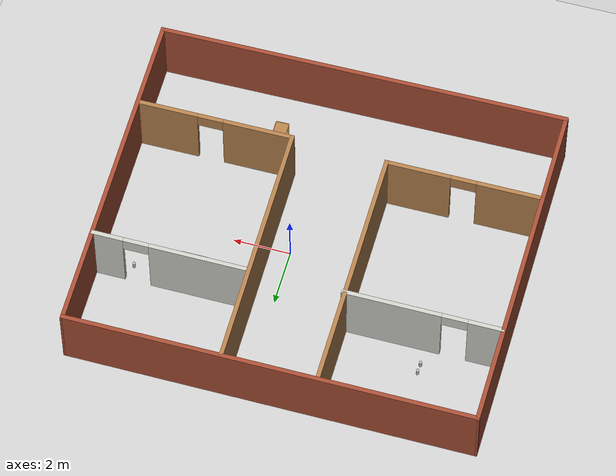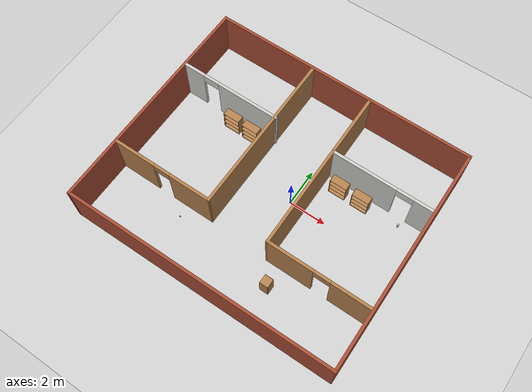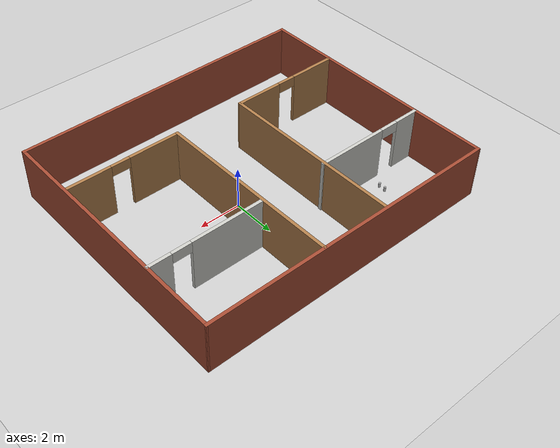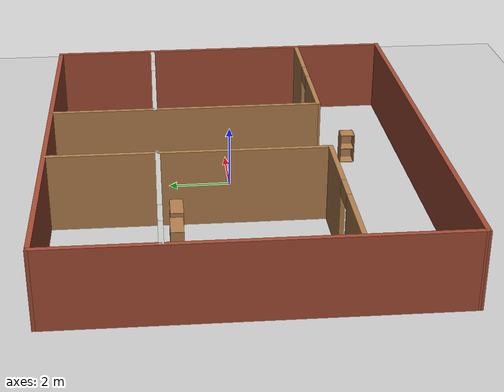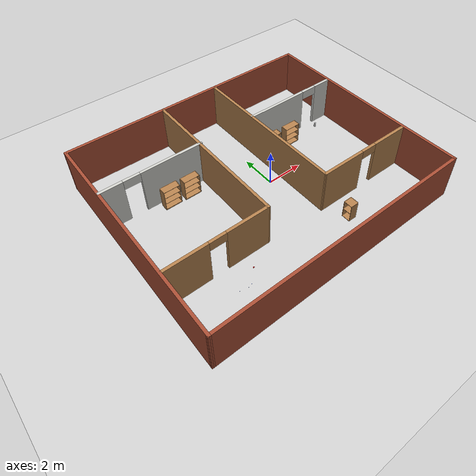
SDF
<sdf version="1.7">
 <world name="default">
  <light name="sun" type="directional">
   <pose>0 0 10 0 -0 0</pose>
   <diffuse>0.8 0.8 0.8 1</diffuse>
   <specular>0.2 0.2 0.2 1</specular>
   <attenuation>
    <range>1000</range>
    <constant>0.9</constant>
    <linear>0.01</linear>
    <quadratic>0.001</quadratic>
   </attenuation>
   <direction>-0.5 0.1 -0.9</direction>
   <spot><inner_angle>0</inner_angle><outer_angle>0</outer_angle><falloff>0</falloff></spot>
  </light>
  <model name="ground_plane">
   <static>1</static>
   <link name="link">
    <collision name="collision">
     <geometry><plane><normal>0 0 1</normal><size>100 100</size></plane></geometry>
     <surface><friction><ode><mu>100</mu><mu2>50</mu2></ode></friction></surface>
    </collision>
    <visual name="visual">
     <cast_shadows>0</cast_shadows>
     <geometry><plane><normal>0 0 1</normal><size>100 100</size></plane></geometry>
     <material>
      <script><uri>file://media/materials/scripts/gazebo.material</uri><name>Gazebo/Grey</name></script>
     </material>
    </visual>
   </link>
  </model>
  <gravity>0 0 -9.8</gravity>
  <magnetic_field>6e-06 2.3e-05 -4.2e-05</magnetic_field>
  <atmosphere type="adiabatic"/>
  <physics type="ode">
   <max_step_size>0.001</max_step_size>
   <real_time_factor>1</real_time_factor>
   <real_time_update_rate>1000</real_time_update_rate>
  </physics>
  <scene><ambient>0.4 0.4 0.4 1</ambient><background>0.7 0.7 0.7 1</background><shadows>1</shadows></scene>
  <audio><device>default</device></audio>
  <spherical_coordinates>
   <surface_model>EARTH_WGS84</surface_model>
   <latitude_deg>0</latitude_deg>
   <longitude_deg>0</longitude_deg>
   <elevation>0</elevation>
   <heading_deg>0</heading_deg>
  </spherical_coordinates>
  <model name="my_floor">
   <pose>-0.890174 -0.198428 0 0 -0 0</pose>
   <link name="Wall_0">
    <collision name="Wall_0_Collision">
     <geometry><box><size>12.2384 0.15 2.5</size></box></geometry>
     <pose>0 0 1.25 0 -0 0</pose>
    </collision>
    <visual name="Wall_0_Visual">
     <pose>0 0 1.25 0 -0 0</pose>
     <geometry><box><size>12.2384 0.15 2.5</size></box></geometry>
     <material>
      <script><uri>file://media/materials/scripts/gazebo.material</uri><name>Gazebo/Bricks</name></script>
      <ambient>1 1 1 1</ambient>
     </material>
     <meta><layer>0</layer></meta>
    </visual>
    <pose>-7.14032 7.5e-05 0 0 -0 1.5658</pose>
   </link>
   <link name="Wall_10">
    <pose>-4.36465 2.59473 0 0 -0 -0.00369</pose>
    <visual name="Wall_10_Visual_0">
     <pose>-2.17328 0 1.25 0 -0 0</pose>
     <geometry><box><size>1.25426 0.15 2.5</size></box></geometry>
     <material>
      <script><uri>file://media/materials/scripts/gazebo.material</uri><name>Gazebo/CeilingTiled</name></script>
      <ambient>1 1 1 1</ambient>
     </material>
     <meta><layer>0</layer></meta>
    </visual>
    <collision name="Wall_10_Collision_0">
     <geometry><box><size>1.25426 0.15 2.5</size></box></geometry>
     <pose>-2.17328 0 1.25 0 -0 0</pose>
    </collision>
    <visual name="Wall_10_Visual_1">
     <pose>1.07713 0 1.25 0 -0 0</pose>
     <geometry><box><size>3.44655 0.15 2.5</size></box></geometry>
     <material>
      <script><uri>file://media/materials/scripts/gazebo.material</uri><name>Gazebo/CeilingTiled</name></script>
      <ambient>1 1 1 1</ambient>
     </material>
     <meta><layer>0</layer></meta>
    </visual>
    <collision name="Wall_10_Collision_1">
     <geometry><box><size>3.44655 0.15 2.5</size></box></geometry>
     <pose>1.07713 0 1.25 0 -0 0</pose>
    </collision>
    <visual name="Wall_10_Visual_2">
     <pose>-1.09614 0 2.25 0 -0 0</pose>
     <geometry><box><size>0.9 0.15 0.5</size></box></geometry>
     <material>
      <script><uri>file://media/materials/scripts/gazebo.material</uri><name>Gazebo/CeilingTiled</name></script>
      <ambient>1 1 1 1</ambient>
     </material>
     <meta><layer>0</layer></meta>
    </visual>
    <collision name="Wall_10_Collision_2">
     <geometry><box><size>0.9 0.15 0.5</size></box></geometry>
     <pose>-1.09614 0 2.25 0 -0 0</pose>
    </collision>
   </link>
   <link name="Wall_13">
    <collision name="Wall_13_Collision">
     <geometry><box><size>8.93972 0.15 2.5</size></box></geometry>
     <pose>0 0 1.25 0 -0 0</pose>
    </collision>
    <visual name="Wall_13_Visual">
     <pose>0 0 1.25 0 -0 0</pose>
     <geometry><box><size>8.93972 0.15 2.5</size></box></geometry>
     <material>
      <script><uri>file://media/materials/scripts/gazebo.material</uri><name>Gazebo/Wood</name></script>
      <ambient>1 1 1 1</ambient>
     </material>
     <meta><layer>0</layer></meta>
    </visual>
    <pose>1.63926 1.54882 0 0 -0 -1.56622</pose>
   </link>
   <link name="Wall_14">
    <pose>4.33437 -2.84599 0 0 -0 0</pose>
    <visual name="Wall_14_Visual_0">
     <pose>-1.49127 0 1.25 0 -0 0</pose>
     <geometry><box><size>2.51747 0.15 2.5</size></box></geometry>
     <material>
      <script><uri>file://media/materials/scripts/gazebo.material</uri><name>Gazebo/Wood</name></script>
      <ambient>1 1 1 1</ambient>
     </material>
     <meta><layer>0</layer></meta>
    </visual>
    <collision name="Wall_14_Collision_0">
     <geometry><box><size>2.51747 0.15 2.5</size></box></geometry>
     <pose>-1.49127 0 1.25 0 -0 0</pose>
    </collision>
    <visual name="Wall_14_Visual_1">
     <pose>1.70873 0 1.25 0 -0 0</pose>
     <geometry><box><size>2.08253 0.15 2.5</size></box></geometry>
     <material>
      <script><uri>file://media/materials/scripts/gazebo.material</uri><name>Gazebo/Wood</name></script>
      <ambient>1 1 1 1</ambient>
     </material>
     <meta><layer>0</layer></meta>
    </visual>
    <collision name="Wall_14_Collision_1">
     <geometry><box><size>2.08253 0.15 2.5</size></box></geometry>
     <pose>1.70873 0 1.25 0 -0 0</pose>
    </collision>
    <visual name="Wall_14_Visual_2">
     <pose>0.217471 0 2.25 0 -0 0</pose>
     <geometry><box><size>0.9 0.15 0.5</size></box></geometry>
     <material>
      <script><uri>file://media/materials/scripts/gazebo.material</uri><name>Gazebo/Wood</name></script>
      <ambient>1 1 1 1</ambient>
     </material>
     <meta><layer>0</layer></meta>
    </visual>
    <collision name="Wall_14_Collision_2">
     <geometry><box><size>0.9 0.15 0.5</size></box></geometry>
     <pose>0.217471 0 2.25 0 -0 0</pose>
    </collision>
   </link>
   <link name="Wall_16">
    <pose>4.35459 2.59473 0 0 -0 -0.003704</pose>
    <visual name="Wall_16_Visual_0">
     <pose>-1.00976 0 1.25 0 -0 0</pose>
     <geometry><box><size>3.56118 0.15 2.5</size></box></geometry>
     <material>
      <script><uri>file://media/materials/scripts/gazebo.material</uri><name>Gazebo/CeilingTiled</name></script>
      <ambient>1 1 1 1</ambient>
     </material>
     <meta><layer>0</layer></meta>
    </visual>
    <collision name="Wall_16_Collision_0">
     <geometry><box><size>3.56118 0.15 2.5</size></box></geometry>
     <pose>-1.00976 0 1.25 0 -0 0</pose>
    </collision>
    <visual name="Wall_16_Visual_1">
     <pose>2.23059 0 1.25 0 -0 0</pose>
     <geometry><box><size>1.11953 0.15 2.5</size></box></geometry>
     <material>
      <script><uri>file://media/materials/scripts/gazebo.material</uri><name>Gazebo/CeilingTiled</name></script>
      <ambient>1 1 1 1</ambient>
     </material>
     <meta><layer>0</layer></meta>
    </visual>
    <collision name="Wall_16_Collision_1">
     <geometry><box><size>1.11953 0.15 2.5</size></box></geometry>
     <pose>2.23059 0 1.25 0 -0 0</pose>
    </collision>
    <visual name="Wall_16_Visual_2">
     <pose>1.22083 0 2.25 0 -0 0</pose>
     <geometry><box><size>0.9 0.15 0.5</size></box></geometry>
     <material>
      <script><uri>file://media/materials/scripts/gazebo.material</uri><name>Gazebo/CeilingTiled</name></script>
      <ambient>1 1 1 1</ambient>
     </material>
     <meta><layer>0</layer></meta>
    </visual>
    <collision name="Wall_16_Collision_2">
     <geometry><box><size>0.9 0.15 0.5</size></box></geometry>
     <pose>1.22083 0 2.25 0 -0 0</pose>
    </collision>
   </link>
   <link name="Wall_2">
    <collision name="Wall_2_Collision">
     <geometry><box><size>14.3503 0.15 2.5</size></box></geometry>
     <pose>0 0 1.25 0 -0 0</pose>
    </collision>
    <visual name="Wall_2_Visual">
     <pose>0 0 1.25 0 -0 0</pose>
     <geometry><box><size>14.3503 0.15 2.5</size></box></geometry>
     <material>
      <script><uri>file://media/materials/scripts/gazebo.material</uri><name>Gazebo/Bricks</name></script>
      <ambient>1 1 1 1</ambient>
     </material>
     <meta><layer>0</layer></meta>
    </visual>
    <pose>-0.010057 6.01403 0 0 -0 -0.004249</pose>
   </link>
   <link name="Wall_3">
    <collision name="Wall_3_Collision">
     <geometry><box><size>12.0776 0.15 2.5</size></box></geometry>
     <pose>0 0 1.25 0 -0 0</pose>
    </collision>
    <visual name="Wall_3_Visual">
     <pose>0 0 1.25 0 -0 0</pose>
     <geometry><box><size>12.0776 0.15 2.5</size></box></geometry>
     <material>
      <script><uri>file://media/materials/scripts/gazebo.material</uri><name>Gazebo/Bricks</name></script>
      <ambient>1 1 1 1</ambient>
     </material>
     <meta><layer>0</layer></meta>
    </visual>
    <pose>7.13026 0.020189 0 0 -0 -1.56405</pose>
   </link>
   <link name="Wall_4">
    <collision name="Wall_4_Collision">
     <geometry><box><size>14.4913 0.15 2.5</size></box></geometry>
     <pose>0 0 1.25 0 -0 0</pose>
    </collision>
    <visual name="Wall_4_Visual">
     <pose>0 0 1.25 0 -0 0</pose>
     <geometry><box><size>14.4913 0.15 2.5</size></box></geometry>
     <material>
      <script><uri>file://media/materials/scripts/gazebo.material</uri><name>Gazebo/Bricks</name></script>
      <ambient>1 1 1 1</ambient>
     </material>
     <meta><layer>0</layer></meta>
    </visual>
    <pose>0 -5.99377 0 0 -0 -3.13458</pose>
   </link>
   <link name="Wall_7">
    <collision name="Wall_7_Collision">
     <geometry><box><size>8.83906 0.15 2.5</size></box></geometry>
     <pose>0 0 1.25 0 -0 0</pose>
    </collision>
    <visual name="Wall_7_Visual">
     <pose>0 0 1.25 0 -0 0</pose>
     <geometry><box><size>8.83906 0.15 2.5</size></box></geometry>
     <material>
      <script><uri>file://media/materials/scripts/gazebo.material</uri><name>Gazebo/Wood</name></script>
      <ambient>1 1 1 1</ambient>
     </material>
     <meta><layer>0</layer></meta>
    </visual>
    <pose>-1.68954 1.61922 0 0 -0 -1.57311</pose>
   </link>
   <link name="Wall_8">
    <pose>-4.3746 -2.72531 0 0 -0 3.14159</pose>
    <visual name="Wall_8_Visual_0">
     <pose>-1.58259 0 1.25 0 -0 0</pose>
     <geometry><box><size>2.33482 0.15 2.5</size></box></geometry>
     <material>
      <script><uri>file://media/materials/scripts/gazebo.material</uri><name>Gazebo/Wood</name></script>
      <ambient>1 1 1 1</ambient>
     </material>
     <meta><layer>0</layer></meta>
    </visual>
    <collision name="Wall_8_Collision_0">
     <geometry><box><size>2.33482 0.15 2.5</size></box></geometry>
     <pose>-1.58259 0 1.25 0 -0 0</pose>
    </collision>
    <visual name="Wall_8_Visual_1">
     <pose>1.61741 0 1.25 0 -0 0</pose>
     <geometry><box><size>2.26518 0.15 2.5</size></box></geometry>
     <material>
      <script><uri>file://media/materials/scripts/gazebo.material</uri><name>Gazebo/Wood</name></script>
      <ambient>1 1 1 1</ambient>
     </material>
     <meta><layer>0</layer></meta>
    </visual>
    <collision name="Wall_8_Collision_1">
     <geometry><box><size>2.26518 0.15 2.5</size></box></geometry>
     <pose>1.61741 0 1.25 0 -0 0</pose>
    </collision>
    <visual name="Wall_8_Visual_2">
     <pose>0.034824 0 2.25 0 -0 0</pose>
     <geometry><box><size>0.9 0.15 0.5</size></box></geometry>
     <material>
      <script><uri>file://media/materials/scripts/gazebo.material</uri><name>Gazebo/Wood</name></script>
      <ambient>1 1 1 1</ambient>
     </material>
     <meta><layer>0</layer></meta>
    </visual>
    <collision name="Wall_8_Collision_2">
     <geometry><box><size>0.9 0.15 0.5</size></box></geometry>
     <pose>0.034824 0 2.25 0 -0 0</pose>
    </collision>
   </link>
   <static>1</static>
  </model>
  <model name="bookshelf">
   <static>1</static>
   <link name="link">
    <inertial><mass>1</mass></inertial>
    <collision name="back">
     <pose>0 0.005 0.6 0 -0 0</pose>
     <geometry><box><size>0.9 0.01 1.2</size></box></geometry>
    </collision>
    <visual name="visual1">
     <pose>0 0.005 0.6 0 -0 0</pose>
     <geometry><box><size>0.9 0.01 1.2</size></box></geometry>
     <material>
      <script><uri>file://media/materials/scripts/gazebo.material</uri><name>Gazebo/Wood</name></script>
     </material>
    </visual>
    <collision name="left_side">
     <pose>0.45 -0.195 0.6 0 -0 0</pose>
     <geometry><box><size>0.02 0.4 1.2</size></box></geometry>
    </collision>
    <visual name="visual2">
     <pose>0.45 -0.195 0.6 0 -0 0</pose>
     <geometry><box><size>0.02 0.4 1.2</size></box></geometry>
     <material>
      <script><uri>file://media/materials/scripts/gazebo.material</uri><name>Gazebo/Wood</name></script>
     </material>
    </visual>
    <collision name="right_side">
     <pose>-0.45 -0.195 0.6 0 -0 0</pose>
     <geometry><box><size>0.02 0.4 1.2</size></box></geometry>
    </collision>
    <visual name="visual3">
     <pose>-0.45 -0.195 0.6 0 -0 0</pose>
     <geometry><box><size>0.02 0.4 1.2</size></box></geometry>
     <material>
      <script><uri>file://media/materials/scripts/gazebo.material</uri><name>Gazebo/Wood</name></script>
     </material>
    </visual>
    <collision name="bottom">
     <pose>0 -0.195 0.03 0 -0 0</pose>
     <geometry><box><size>0.88 0.4 0.06</size></box></geometry>
    </collision>
    <visual name="visual4">
     <pose>0 -0.195 0.03 0 -0 0</pose>
     <geometry><box><size>0.88 0.4 0.06</size></box></geometry>
     <material>
      <script><uri>file://media/materials/scripts/gazebo.material</uri><name>Gazebo/Wood</name></script>
     </material>
    </visual>
    <collision name="top">
     <pose>0 -0.195 1.19 0 -0 0</pose>
     <geometry><box><size>0.88 0.4 0.02</size></box></geometry>
    </collision>
    <visual name="visual5">
     <pose>0 -0.195 1.19 0 -0 0</pose>
     <geometry><box><size>0.88 0.4 0.02</size></box></geometry>
     <material>
      <script><uri>file://media/materials/scripts/gazebo.material</uri><name>Gazebo/Wood</name></script>
     </material>
    </visual>
    <collision name="low_shelf">
     <pose>0 -0.195 0.43 0 -0 0</pose>
     <geometry><box><size>0.88 0.4 0.02</size></box></geometry>
    </collision>
    <visual name="visual6">
     <pose>0 -0.195 0.43 0 -0 0</pose>
     <geometry><box><size>0.88 0.4 0.02</size></box></geometry>
     <material>
      <script><uri>file://media/materials/scripts/gazebo.material</uri><name>Gazebo/Wood</name></script>
     </material>
    </visual>
    <collision name="high_shelf">
     <pose>0 -0.195 0.8 0 -0 0</pose>
     <geometry><box><size>0.88 0.4 0.02</size></box></geometry>
    </collision>
    <visual name="visual7">
     <pose>0 -0.195 0.8 0 -0 0</pose>
     <geometry><box><size>0.88 0.4 0.02</size></box></geometry>
     <material>
      <script><uri>file://media/materials/scripts/gazebo.material</uri><name>Gazebo/Wood</name></script>
     </material>
    </visual>
   </link>
   <pose>-4.76816 2.11045 0 0 -0 0</pose>
  </model>
  <model name="bookshelf_0">
   <static>1</static>
   <link name="link">
    <inertial><mass>1</mass></inertial>
    <collision name="back">
     <pose>0 0.005 0.6 0 -0 0</pose>
     <geometry><box><size>0.9 0.01 1.2</size></box></geometry>
    </collision>
    <visual name="visual1">
     <pose>0 0.005 0.6 0 -0 0</pose>
     <geometry><box><size>0.9 0.01 1.2</size></box></geometry>
     <material>
      <script><uri>file://media/materials/scripts/gazebo.material</uri><name>Gazebo/Wood</name></script>
     </material>
    </visual>
    <collision name="left_side">
     <pose>0.45 -0.195 0.6 0 -0 0</pose>
     <geometry><box><size>0.02 0.4 1.2</size></box></geometry>
    </collision>
    <visual name="visual2">
     <pose>0.45 -0.195 0.6 0 -0 0</pose>
     <geometry><box><size>0.02 0.4 1.2</size></box></geometry>
     <material>
      <script><uri>file://media/materials/scripts/gazebo.material</uri><name>Gazebo/Wood</name></script>
     </material>
    </visual>
    <collision name="right_side">
     <pose>-0.45 -0.195 0.6 0 -0 0</pose>
     <geometry><box><size>0.02 0.4 1.2</size></box></geometry>
    </collision>
    <visual name="visual3">
     <pose>-0.45 -0.195 0.6 0 -0 0</pose>
     <geometry><box><size>0.02 0.4 1.2</size></box></geometry>
     <material>
      <script><uri>file://media/materials/scripts/gazebo.material</uri><name>Gazebo/Wood</name></script>
     </material>
    </visual>
    <collision name="bottom">
     <pose>0 -0.195 0.03 0 -0 0</pose>
     <geometry><box><size>0.88 0.4 0.06</size></box></geometry>
    </collision>
    <visual name="visual4">
     <pose>0 -0.195 0.03 0 -0 0</pose>
     <geometry><box><size>0.88 0.4 0.06</size></box></geometry>
     <material>
      <script><uri>file://media/materials/scripts/gazebo.material</uri><name>Gazebo/Wood</name></script>
     </material>
    </visual>
    <collision name="top">
     <pose>0 -0.195 1.19 0 -0 0</pose>
     <geometry><box><size>0.88 0.4 0.02</size></box></geometry>
    </collision>
    <visual name="visual5">
     <pose>0 -0.195 1.19 0 -0 0</pose>
     <geometry><box><size>0.88 0.4 0.02</size></box></geometry>
     <material>
      <script><uri>file://media/materials/scripts/gazebo.material</uri><name>Gazebo/Wood</name></script>
     </material>
    </visual>
    <collision name="low_shelf">
     <pose>0 -0.195 0.43 0 -0 0</pose>
     <geometry><box><size>0.88 0.4 0.02</size></box></geometry>
    </collision>
    <visual name="visual6">
     <pose>0 -0.195 0.43 0 -0 0</pose>
     <geometry><box><size>0.88 0.4 0.02</size></box></geometry>
     <material>
      <script><uri>file://media/materials/scripts/gazebo.material</uri><name>Gazebo/Wood</name></script>
     </material>
    </visual>
    <collision name="high_shelf">
     <pose>0 -0.195 0.8 0 -0 0</pose>
     <geometry><box><size>0.88 0.4 0.02</size></box></geometry>
    </collision>
    <visual name="visual7">
     <pose>0 -0.195 0.8 0 -0 0</pose>
     <geometry><box><size>0.88 0.4 0.02</size></box></geometry>
     <material>
      <script><uri>file://media/materials/scripts/gazebo.material</uri><name>Gazebo/Wood</name></script>
     </material>
    </visual>
   </link>
   <pose>-3.63806 2.0793 0 0 -0 0</pose>
  </model>
  <model name="beer">
   <link name="link">
    <pose>0 0 0.115 0 -0 0</pose>
    <inertial>
     <mass>0.39</mass>
     <inertia><ixx>0.00058</ixx><ixy>0</ixy><ixz>0</ixz><iyy>0.00058</iyy><iyz>0</iyz><izz>0.00019</izz></inertia>
    </inertial>
    <collision name="collision">
     <geometry><cylinder><radius>0.055</radius><length>0.23</length></cylinder></geometry>
    </collision>
    <visual name="visual">
     <geometry><cylinder><radius>0.055</radius><length>0.23</length></cylinder></geometry>
     <material>
      <script>
       <uri>model://beer/materials/scripts</uri>
       <uri>model://beer/materials/textures</uri>
       <name>Beer/Diffuse</name>
      </script>
     </material>
    </visual>
   </link>
   <pose>-5.40247 3.06546 -2e-06 1e-06 -0 -3.4e-05</pose>
  </model>
  <model name="beer_0">
   <link name="link">
    <pose>0 0 0.115 0 -0 0</pose>
    <inertial>
     <mass>0.39</mass>
     <inertia><ixx>0.00058</ixx><ixy>0</ixy><ixz>0</ixz><iyy>0.00058</iyy><iyz>0</iyz><izz>0.00019</izz></inertia>
    </inertial>
    <collision name="collision">
     <geometry><cylinder><radius>0.055</radius><length>0.23</length></cylinder></geometry>
    </collision>
    <visual name="visual">
     <geometry><cylinder><radius>0.055</radius><length>0.23</length></cylinder></geometry>
     <material>
      <script>
       <uri>model://beer/materials/scripts</uri>
       <uri>model://beer/materials/textures</uri>
       <name>Beer/Diffuse</name>
      </script>
     </material>
    </visual>
   </link>
   <pose>-5.3848 3.388 -2e-06 1e-06 0 -3.1e-05</pose>
  </model>
  <model name="bookshelf_1">
   <static>1</static>
   <link name="link">
    <inertial><mass>1</mass></inertial>
    <collision name="back">
     <pose>0 0.005 0.6 0 -0 0</pose>
     <geometry><box><size>0.9 0.01 1.2</size></box></geometry>
    </collision>
    <visual name="visual1">
     <pose>0 0.005 0.6 0 -0 0</pose>
     <geometry><box><size>0.9 0.01 1.2</size></box></geometry>
     <material>
      <script><uri>file://media/materials/scripts/gazebo.material</uri><name>Gazebo/Wood</name></script>
     </material>
    </visual>
    <collision name="left_side">
     <pose>0.45 -0.195 0.6 0 -0 0</pose>
     <geometry><box><size>0.02 0.4 1.2</size></box></geometry>
    </collision>
    <visual name="visual2">
     <pose>0.45 -0.195 0.6 0 -0 0</pose>
     <geometry><box><size>0.02 0.4 1.2</size></box></geometry>
     <material>
      <script><uri>file://media/materials/scripts/gazebo.material</uri><name>Gazebo/Wood</name></script>
     </material>
    </visual>
    <collision name="right_side">
     <pose>-0.45 -0.195 0.6 0 -0 0</pose>
     <geometry><box><size>0.02 0.4 1.2</size></box></geometry>
    </collision>
    <visual name="visual3">
     <pose>-0.45 -0.195 0.6 0 -0 0</pose>
     <geometry><box><size>0.02 0.4 1.2</size></box></geometry>
     <material>
      <script><uri>file://media/materials/scripts/gazebo.material</uri><name>Gazebo/Wood</name></script>
     </material>
    </visual>
    <collision name="bottom">
     <pose>0 -0.195 0.03 0 -0 0</pose>
     <geometry><box><size>0.88 0.4 0.06</size></box></geometry>
    </collision>
    <visual name="visual4">
     <pose>0 -0.195 0.03 0 -0 0</pose>
     <geometry><box><size>0.88 0.4 0.06</size></box></geometry>
     <material>
      <script><uri>file://media/materials/scripts/gazebo.material</uri><name>Gazebo/Wood</name></script>
     </material>
    </visual>
    <collision name="top">
     <pose>0 -0.195 1.19 0 -0 0</pose>
     <geometry><box><size>0.88 0.4 0.02</size></box></geometry>
    </collision>
    <visual name="visual5">
     <pose>0 -0.195 1.19 0 -0 0</pose>
     <geometry><box><size>0.88 0.4 0.02</size></box></geometry>
     <material>
      <script><uri>file://media/materials/scripts/gazebo.material</uri><name>Gazebo/Wood</name></script>
     </material>
    </visual>
    <collision name="low_shelf">
     <pose>0 -0.195 0.43 0 -0 0</pose>
     <geometry><box><size>0.88 0.4 0.02</size></box></geometry>
    </collision>
    <visual name="visual6">
     <pose>0 -0.195 0.43 0 -0 0</pose>
     <geometry><box><size>0.88 0.4 0.02</size></box></geometry>
     <material>
      <script><uri>file://media/materials/scripts/gazebo.material</uri><name>Gazebo/Wood</name></script>
     </material>
    </visual>
    <collision name="high_shelf">
     <pose>0 -0.195 0.8 0 -0 0</pose>
     <geometry><box><size>0.88 0.4 0.02</size></box></geometry>
    </collision>
    <visual name="visual7">
     <pose>0 -0.195 0.8 0 -0 0</pose>
     <geometry><box><size>0.88 0.4 0.02</size></box></geometry>
     <material>
      <script><uri>file://media/materials/scripts/gazebo.material</uri><name>Gazebo/Wood</name></script>
     </material>
    </visual>
   </link>
   <pose>1.64819 1.99693 0 0 -0 0</pose>
  </model>
  <model name="bookshelf_2">
   <static>1</static>
   <link name="link">
    <inertial><mass>1</mass></inertial>
    <collision name="back">
     <pose>0 0.005 0.6 0 -0 0</pose>
     <geometry><box><size>0.9 0.01 1.2</size></box></geometry>
    </collision>
    <visual name="visual1">
     <pose>0 0.005 0.6 0 -0 0</pose>
     <geometry><box><size>0.9 0.01 1.2</size></box></geometry>
     <material>
      <script><uri>file://media/materials/scripts/gazebo.material</uri><name>Gazebo/Wood</name></script>
     </material>
    </visual>
    <collision name="left_side">
     <pose>0.45 -0.195 0.6 0 -0 0</pose>
     <geometry><box><size>0.02 0.4 1.2</size></box></geometry>
    </collision>
    <visual name="visual2">
     <pose>0.45 -0.195 0.6 0 -0 0</pose>
     <geometry><box><size>0.02 0.4 1.2</size></box></geometry>
     <material>
      <script><uri>file://media/materials/scripts/gazebo.material</uri><name>Gazebo/Wood</name></script>
     </material>
    </visual>
    <collision name="right_side">
     <pose>-0.45 -0.195 0.6 0 -0 0</pose>
     <geometry><box><size>0.02 0.4 1.2</size></box></geometry>
    </collision>
    <visual name="visual3">
     <pose>-0.45 -0.195 0.6 0 -0 0</pose>
     <geometry><box><size>0.02 0.4 1.2</size></box></geometry>
     <material>
      <script><uri>file://media/materials/scripts/gazebo.material</uri><name>Gazebo/Wood</name></script>
     </material>
    </visual>
    <collision name="bottom">
     <pose>0 -0.195 0.03 0 -0 0</pose>
     <geometry><box><size>0.88 0.4 0.06</size></box></geometry>
    </collision>
    <visual name="visual4">
     <pose>0 -0.195 0.03 0 -0 0</pose>
     <geometry><box><size>0.88 0.4 0.06</size></box></geometry>
     <material>
      <script><uri>file://media/materials/scripts/gazebo.material</uri><name>Gazebo/Wood</name></script>
     </material>
    </visual>
    <collision name="top">
     <pose>0 -0.195 1.19 0 -0 0</pose>
     <geometry><box><size>0.88 0.4 0.02</size></box></geometry>
    </collision>
    <visual name="visual5">
     <pose>0 -0.195 1.19 0 -0 0</pose>
     <geometry><box><size>0.88 0.4 0.02</size></box></geometry>
     <material>
      <script><uri>file://media/materials/scripts/gazebo.material</uri><name>Gazebo/Wood</name></script>
     </material>
    </visual>
    <collision name="low_shelf">
     <pose>0 -0.195 0.43 0 -0 0</pose>
     <geometry><box><size>0.88 0.4 0.02</size></box></geometry>
    </collision>
    <visual name="visual6">
     <pose>0 -0.195 0.43 0 -0 0</pose>
     <geometry><box><size>0.88 0.4 0.02</size></box></geometry>
     <material>
      <script><uri>file://media/materials/scripts/gazebo.material</uri><name>Gazebo/Wood</name></script>
     </material>
    </visual>
    <collision name="high_shelf">
     <pose>0 -0.195 0.8 0 -0 0</pose>
     <geometry><box><size>0.88 0.4 0.02</size></box></geometry>
    </collision>
    <visual name="visual7">
     <pose>0 -0.195 0.8 0 -0 0</pose>
     <geometry><box><size>0.88 0.4 0.02</size></box></geometry>
     <material>
      <script><uri>file://media/materials/scripts/gazebo.material</uri><name>Gazebo/Wood</name></script>
     </material>
    </visual>
   </link>
   <pose>2.90918 1.96321 0 0 -0 0</pose>
  </model>
  <model name="beer_1">
   <link name="link">
    <pose>0 0 0.115 0 -0 0</pose>
    <inertial>
     <mass>0.39</mass>
     <inertia><ixx>0.00058</ixx><ixy>0</ixy><ixz>0</ixz><iyy>0.00058</iyy><iyz>0</iyz><izz>0.00019</izz></inertia>
    </inertial>
    <collision name="collision">
     <geometry><cylinder><radius>0.055</radius><length>0.23</length></cylinder></geometry>
    </collision>
    <visual name="visual">
     <geometry><cylinder><radius>0.055</radius><length>0.23</length></cylinder></geometry>
     <material>
      <script>
       <uri>model://beer/materials/scripts</uri>
       <uri>model://beer/materials/textures</uri>
       <name>Beer/Diffuse</name>
      </script>
     </material>
    </visual>
   </link>
   <pose>4.98942 1.90656 -7e-06 -1e-06 -0 -1.6e-05</pose>
  </model>
  <model name="cabinet">
   <static>1</static>
   <link name="cabinet_bottom_plate">
    <inertial>
     <pose>0 0 -1 0 -0 0</pose>
     <inertia><ixx>2.05</ixx><ixy>0</ixy><ixz>0</ixz><iyy>2.05</iyy><iyz>0</iyz><izz>2.05</izz></inertia>
     <mass>25</mass>
    </inertial>
    <collision name="cabinet_bottom_plate_geom">
     <pose>0 0 0.01 0 -0 0</pose>
     <geometry><box><size>0.45 0.45 0.02</size></box></geometry>
    </collision>
    <visual name="cabinet_bottom_plate_geom_visual">
     <pose>0 0 0.01 0 -0 0</pose>
     <geometry><box><size>0.45 0.45 0.02</size></box></geometry>
     <material>
      <script><uri>file://media/materials/scripts/gazebo.material</uri><name>Gazebo/Wood</name></script>
     </material>
    </visual>
    <collision name="cabinet_bottom_plate_geom_cabinet_back_plate">
     <pose>0.235 0 0.51 0 -0 0</pose>
     <geometry><box><size>0.02 0.45 1.02</size></box></geometry>
    </collision>
    <visual name="cabinet_bottom_plate_geom_cabinet_back_plate_visual">
     <pose>0.235 0 0.51 0 -0 0</pose>
     <geometry><box><size>0.02 0.45 1.02</size></box></geometry>
     <material>
      <script><uri>file://media/materials/scripts/gazebo.material</uri><name>Gazebo/Wood</name></script>
     </material>
    </visual>
    <collision name="cabinet_bottom_plate_geom_cabinet_left_plate">
     <pose>0 0.235 0.51 0 -0 0</pose>
     <geometry><box><size>0.45 0.02 1.02</size></box></geometry>
    </collision>
    <visual name="cabinet_bottom_plate_geom_cabinet_left_plate_visual">
     <pose>0 0.235 0.51 0 -0 0</pose>
     <geometry><box><size>0.45 0.02 1.02</size></box></geometry>
     <material>
      <script><uri>file://media/materials/scripts/gazebo.material</uri><name>Gazebo/Wood</name></script>
     </material>
    </visual>
    <collision name="cabinet_bottom_plate_geom_cabinet_middle_plate">
     <pose>0 0 0.51 0 -0 0</pose>
     <geometry><box><size>0.45 0.45 0.02</size></box></geometry>
    </collision>
    <visual name="cabinet_bottom_plate_geom_cabinet_middle_plate_visual">
     <pose>0 0 0.51 0 -0 0</pose>
     <geometry><box><size>0.45 0.45 0.02</size></box></geometry>
     <material>
      <script><uri>file://media/materials/scripts/gazebo.material</uri><name>Gazebo/Wood</name></script>
     </material>
    </visual>
    <collision name="cabinet_bottom_plate_geom_cabinet_right_plate">
     <pose>0 -0.235 0.51 0 -0 0</pose>
     <geometry><box><size>0.45 0.02 1.02</size></box></geometry>
    </collision>
    <visual name="cabinet_bottom_plate_geom_cabinet_right_plate_visual">
     <pose>0 -0.235 0.51 0 -0 0</pose>
     <geometry><box><size>0.45 0.02 1.02</size></box></geometry>
     <material>
      <script><uri>file://media/materials/scripts/gazebo.material</uri><name>Gazebo/Wood</name></script>
     </material>
    </visual>
    <collision name="cabinet_bottom_plate_geom_cabinet_top_plate">
     <pose>0 0 1.01 0 -0 0</pose>
     <geometry><box><size>0.45 0.45 0.02</size></box></geometry>
    </collision>
    <visual name="cabinet_bottom_plate_geom_cabinet_top_plate_visual">
     <pose>0 0 1.01 0 -0 0</pose>
     <geometry><box><size>0.45 0.45 0.02</size></box></geometry>
     <material>
      <script><uri>file://media/materials/scripts/gazebo.material</uri><name>Gazebo/Wood</name></script>
     </material>
    </visual>
   </link>
   <pose>1.49952 -4.21324 0 0 -0 0</pose>
  </model>
  <model name="cricket_ball">
   <link name="link">
    <pose>0 0 0.0375 0 -0 0</pose>
    <inertial>
     <mass>0.1467</mass>
     <inertia>
      <ixx>8.25187e-05</ixx>
      <ixy>0</ixy>
      <ixz>0</ixz>
      <iyy>8.25187e-05</iyy>
      <iyz>0</iyz>
      <izz>8.25187e-05</izz>
     </inertia>
    </inertial>
    <collision name="collision">
     <geometry><sphere><radius>0.0375</radius></sphere></geometry>
     <surface>
      <contact>
       <poissons_ratio>0.347</poissons_ratio>
       <elastic_modulus>8.8e+09</elastic_modulus>
       <ode><kp>100000</kp><kd>100</kd><max_vel>100</max_vel><min_depth>0.001</min_depth></ode>
      </contact>
      <friction>
       <torsional>
        <coefficient>1</coefficient>
        <use_patch_radius>0</use_patch_radius>
        <surface_radius>0.01</surface_radius>
       </torsional>
      </friction>
     </surface>
    </collision>
    <visual name="visual">
     <geometry><sphere><radius>0.0375</radius></sphere></geometry>
     <material>
      <script><uri>file://media/materials/scripts/gazebo.material</uri><name>Gazebo/Red</name></script>
     </material>
    </visual>
    <velocity_decay><linear>0</linear><angular>0.005</angular></velocity_decay>
   </link>
   <pose>-4.00466 -3.65882 -0.001014 0 -0 0</pose>
  </model>
  <model name="marble_1_5cm">
   <link name="link">
    <pose>0 0 0.0075 0 -0 0</pose>
    <inertial>
     <mass>0.0062</mass>
     <inertia>
      <ixx>1.395e-07</ixx>
      <ixy>0</ixy>
      <ixz>0</ixz>
      <iyy>1.395e-07</iyy>
      <iyz>0</iyz>
      <izz>1.395e-07</izz>
     </inertia>
    </inertial>
    <collision name="collision">
     <geometry><sphere><radius>0.0075</radius></sphere></geometry>
     <surface>
      <contact>
       <poissons_ratio>0.22</poissons_ratio>
       <elastic_modulus>5.1e+10</elastic_modulus>
       <ode><kp>100000</kp><kd>100</kd><max_vel>100</max_vel><min_depth>0.001</min_depth></ode>
      </contact>
      <friction>
       <torsional>
        <coefficient>1</coefficient>
        <use_patch_radius>0</use_patch_radius>
        <surface_radius>0.01</surface_radius>
       </torsional>
      </friction>
     </surface>
    </collision>
    <visual name="visual">
     <geometry><sphere><radius>0.0075</radius></sphere></geometry>
     <material>
      <script><uri>file://media/materials/scripts/gazebo.material</uri><name>Gazebo/Blue</name></script>
     </material>
    </visual>
    <velocity_decay><linear>0</linear><angular>0.005</angular></velocity_decay>
   </link>
   <pose>-4.59636 -4.27453 -0.001001 0 -0 0</pose>
  </model>
  <model name="marble_1_5cm_0">
   <link name="link">
    <pose>0 0 0.0075 0 -0 0</pose>
    <inertial>
     <mass>0.0062</mass>
     <inertia>
      <ixx>1.395e-07</ixx>
      <ixy>0</ixy>
      <ixz>0</ixz>
      <iyy>1.395e-07</iyy>
      <iyz>0</iyz>
      <izz>1.395e-07</izz>
     </inertia>
    </inertial>
    <collision name="collision">
     <geometry><sphere><radius>0.0075</radius></sphere></geometry>
     <surface>
      <contact>
       <poissons_ratio>0.22</poissons_ratio>
       <elastic_modulus>5.1e+10</elastic_modulus>
       <ode><kp>100000</kp><kd>100</kd><max_vel>100</max_vel><min_depth>0.001</min_depth></ode>
      </contact>
      <friction>
       <torsional>
        <coefficient>1</coefficient>
        <use_patch_radius>0</use_patch_radius>
        <surface_radius>0.01</surface_radius>
       </torsional>
      </friction>
     </surface>
    </collision>
    <visual name="visual">
     <geometry><sphere><radius>0.0075</radius></sphere></geometry>
     <material>
      <script><uri>file://media/materials/scripts/gazebo.material</uri><name>Gazebo/Blue</name></script>
     </material>
    </visual>
    <velocity_decay><linear>0</linear><angular>0.005</angular></velocity_decay>
   </link>
   <pose>-4.80477 -4.32296 -0.000906 0 -0 0</pose>
  </model>
  <model name="marble_1_5cm_1">
   <link name="link">
    <pose>0 0 0.0075 0 -0 0</pose>
    <inertial>
     <mass>0.0062</mass>
     <inertia>
      <ixx>1.395e-07</ixx>
      <ixy>0</ixy>
      <ixz>0</ixz>
      <iyy>1.395e-07</iyy>
      <iyz>0</iyz>
      <izz>1.395e-07</izz>
     </inertia>
    </inertial>
    <collision name="collision">
     <geometry><sphere><radius>0.0075</radius></sphere></geometry>
     <surface>
      <contact>
       <poissons_ratio>0.22</poissons_ratio>
       <elastic_modulus>5.1e+10</elastic_modulus>
       <ode><kp>100000</kp><kd>100</kd><max_vel>100</max_vel><min_depth>0.001</min_depth></ode>
      </contact>
      <friction>
       <torsional>
        <coefficient>1</coefficient>
        <use_patch_radius>0</use_patch_radius>
        <surface_radius>0.01</surface_radius>
       </torsional>
      </friction>
     </surface>
    </collision>
    <visual name="visual">
     <geometry><sphere><radius>0.0075</radius></sphere></geometry>
     <material>
      <script><uri>file://media/materials/scripts/gazebo.material</uri><name>Gazebo/Blue</name></script>
     </material>
    </visual>
    <velocity_decay><linear>0</linear><angular>0.005</angular></velocity_decay>
   </link>
   <pose>-5.22464 -4.24785 -0.000604 0 -0 0</pose>
  </model>
 </world>
</sdf>
